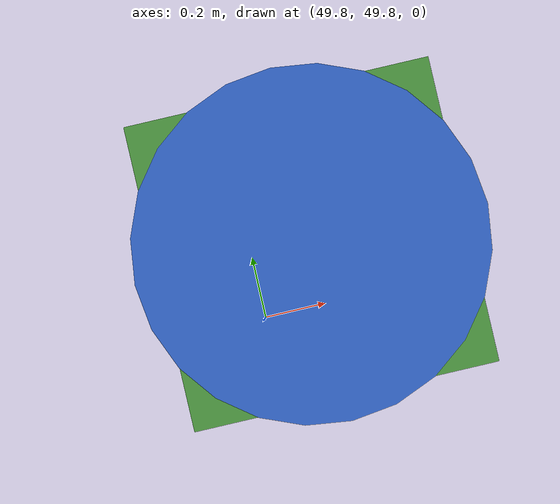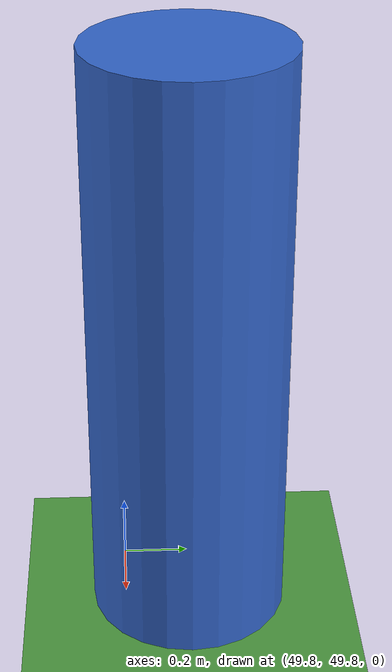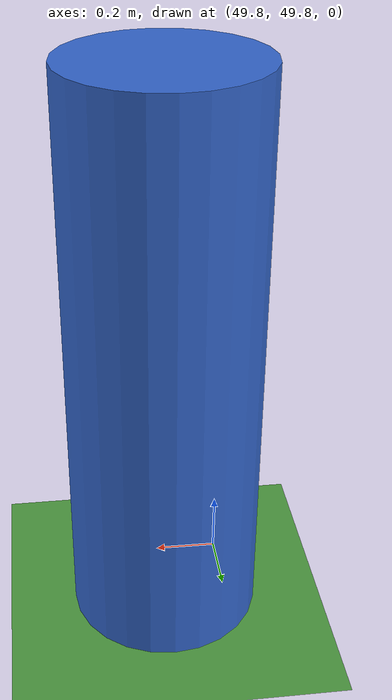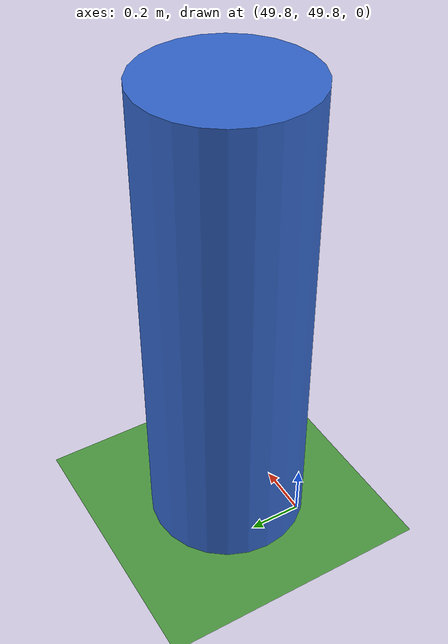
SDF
<?xml version="1.0"?>
<sdf version="1.6">
  <world name="diag_no_walls">

    <!-- Physics: same as sweep_course.world -->
    <physics type="ode">
      <real_time_update_rate>1000</real_time_update_rate>
      <max_step_size>0.002</max_step_size>
      <real_time_factor>0.0</real_time_factor>
      <ode>
        <solver>
          <type>quick</type>
          <iters>50</iters>
          <sor>1.3</sor>
        </solver>
      </ode>
    </physics>

    <light name="sun" type="directional">
      <cast_shadows>true</cast_shadows>
      <pose>0 0 10 0 0 0</pose>
      <diffuse>0.8 0.8 0.8 1</diffuse>
      <specular>0.2 0.2 0.2 1</specular>
      <direction>-0.5 0.1 -0.9</direction>
    </light>

    <!-- Ground plane (必须保留，否则车会掉下去) -->
    <model name="ground_plane">
      <static>true</static>
      <link name="link">
        <collision name="collision">
          <geometry><plane><normal>0 0 1</normal><size>100 100</size></plane></geometry>
          <surface><friction><ode><mu>1</mu><mu2>1</mu2></ode></friction></surface>
        </collision>
        <visual name="visual">
          <geometry><plane><normal>0 0 1</normal><size>100 100</size></plane></geometry>
          <material><script><uri>file://media/materials/scripts/gazebo.material</uri><name>Gazebo/Grass</name></script></material>
        </visual>
      </link>
    </model>

    <!-- 占位的 pedestrian 模型（moving_obstacle_node 需要它） -->
    <!-- 放在远处，不会影响车辆 -->
    <model name="pedestrian">
      <pose>50.0 50.0 0.9 0 0 0</pose>
      <link name="link">
        <inertial><mass>70.0</mass><inertia><ixx>5</ixx><iyy>5</iyy><izz>2</izz><ixy>0</ixy><ixz>0</ixz><iyz>0</iyz></inertia></inertial>
        <collision name="col">
          <geometry><cylinder><radius>0.3</radius><length>1.8</length></cylinder></geometry>
        </collision>
        <visual name="vis">
          <geometry><cylinder><radius>0.3</radius><length>1.8</length></cylinder></geometry>
          <material><ambient>0.2 0.4 0.8 1</ambient></material>
        </visual>
      </link>
    </model>

  </world>
</sdf>
